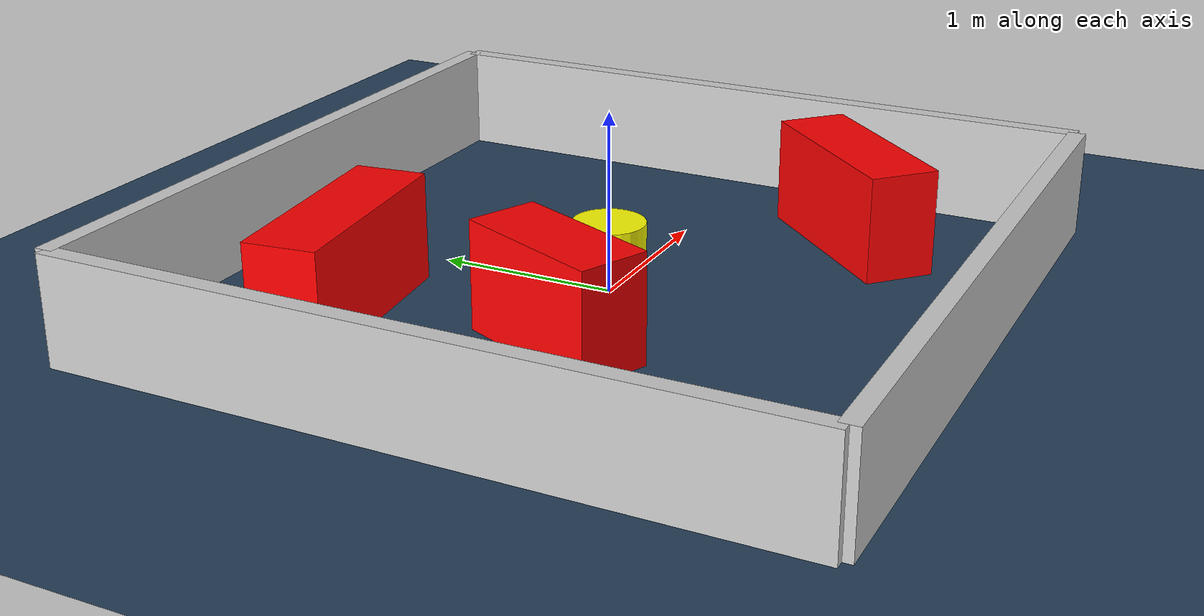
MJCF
<?xml version="1.0" ?>
<mujoco model="generated_environment">
  <option timestep="0.01" integrator="RK4" cone="elliptic"/>
  <default>
    <geom density="1"/>
  </default>
  <asset>
    <texture builtin="gradient" height="3072" rgb1="0.3 0.5 0.7" rgb2="0 0 0" type="skybox" width="512"/>
    <texture builtin="checker" height="300" mark="edge" markrgb="0.8 0.8 0.8" name="groundplane" rgb1="0.2 0.3 0.4" rgb2="0.1 0.2 0.3" type="2d" width="300"/>
    <material name="groundplane" reflectance="0.2" texrepeat="5 5" texture="groundplane" texuniform="true"/>
    <material name="robot" rgba="0.0 1.0 0.0 1"/>
  </asset>
  <worldbody>
    <light dir="0 0 -1" directional="true" pos="0 0 1.5"/>
    <geom condim="4" friction="1.0 0.005 0.001" material="groundplane" name="floor" size="0 0 0.05" type="plane"/>
    <body name="walls">
      <geom name="wall_1" condim="4" pos="-2.0 0.0 0.3" rgba="0.800000011920929 0.800000011920929 0.800000011920929 1.0" size="0.05 2.0 0.3" type="box"/>
      <geom name="wall_2" condim="4" pos="2.0 0.0 0.3" rgba="0.800000011920929 0.800000011920929 0.800000011920929 1.0" size="0.05 2.0 0.3" type="box"/>
      <geom name="wall_3" condim="4" pos="0.0 -2.0 0.3" rgba="0.800000011920929 0.800000011920929 0.800000011920929 1.0" size="2.0 0.05 0.3" type="box"/>
      <geom name="wall_4" condim="4" pos="0.0 2.0 0.3" rgba="0.800000011920929 0.800000011920929 0.800000011920929 1.0" size="2.0 0.05 0.3" type="box"/>
    </body>
    <body name="robot">
      <joint name="joint_x" type="slide" pos="0 0 0" axis="1 0 0"/>
      <joint name="joint_y" type="slide" pos="0 0 0" axis="0 1 0"/>
      <geom name="robot" type="sphere" pos="0.3 0.0 0.2" size="0.05" mass="5." friction="1.0 0.005 0.0001" condim="4" rgba="0.5 0.5 0.5 1.0"/>
      <site name="sensor_ball"/>
    </body>
    <body name="obstacle_movable_1">
      <geom name="obstacle_movable_1" condim="4" pos="0.0 0.0 0.2" euler="0 0 0.0" friction="1.0 0.005 0.001" rgba="1.0 1.0 0.0 1.0" size="0.2 0.2 0.0" type="cylinder" mass="0.1"/>
      <joint type="free"/>
    </body>
    <body name="obstacle_2_static">
      <geom name="obstacle_2_static" condim="4" pos="1.23085889590107 -0.9386395766344349 0.3" euler="0 0 226.80514661044435" friction="1.0 0.005 0.001" rgba="1 0 0 1" size="0.5515696518208733 0.2 0.3" type="box"/>
    </body>
    <body name="obstacle_3_static">
      <geom name="obstacle_3_static" condim="4" pos="-0.883380738394371 1.096019157225779 0.3" euler="0 0 6.831992319693203" friction="1.0 0.005 0.001" rgba="1 0 0 1" size="0.6042259203347056 0.2 0.3" type="box"/>
    </body>
    <body name="obstacle_4_static">
      <geom name="obstacle_4_static" condim="4" pos="-0.7484670392030466 -0.08390816377058608 0.3" euler="0 0 66.20874020591785" friction="1.0 0.005 0.001" rgba="1 0 0 1" size="0.4444562601379133 0.2 0.3" type="box"/>
    </body>
  </worldbody>
  <actuator>
    <motor name="actuator_x" joint="joint_x" gear="1" ctrlrange="-1 1"/>
    <motor name="actuator_y" joint="joint_y" gear="1" ctrlrange="-1 1"/>
  </actuator>
</mujoco>
